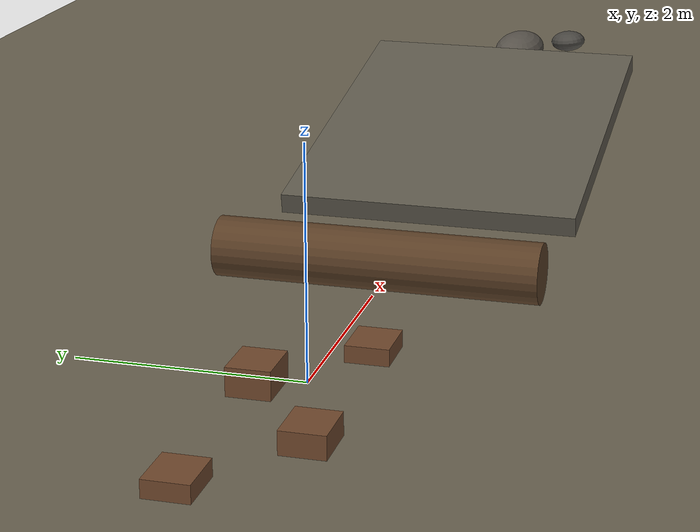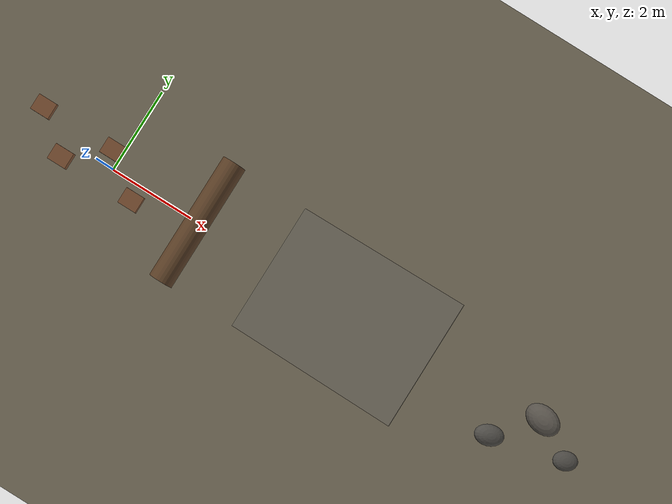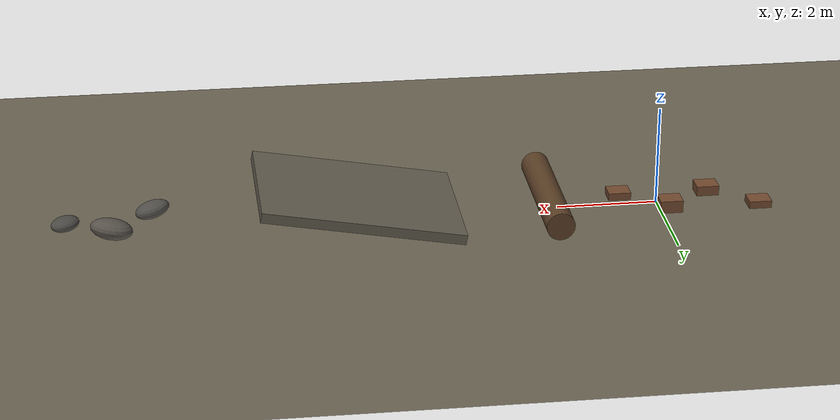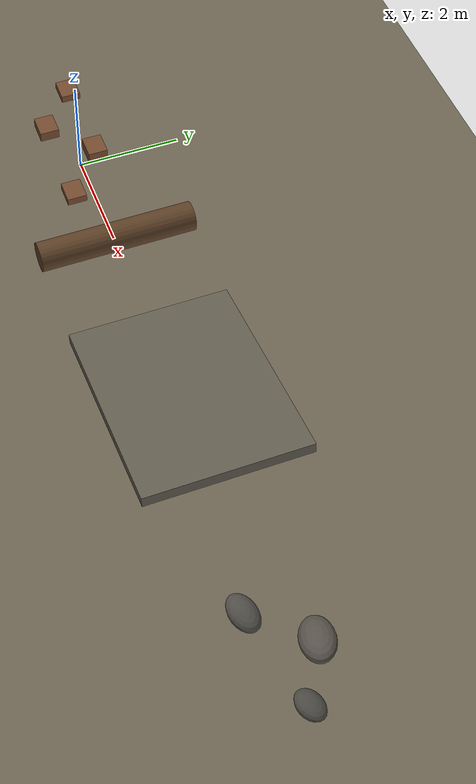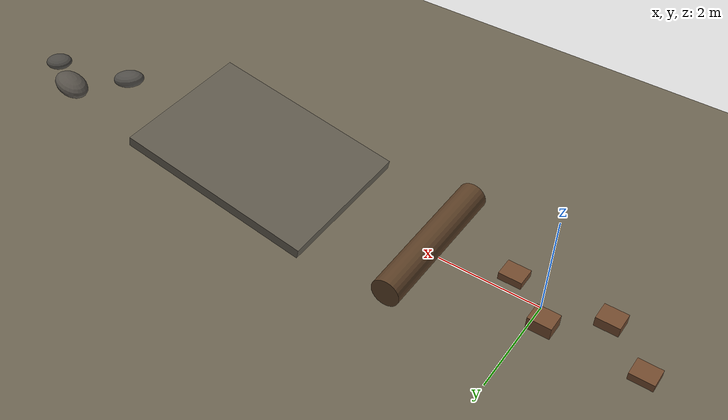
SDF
<?xml version="1.0" ?>
<sdf version="1.8">
  <world name="core_validation">
    <physics name="dart_1ms" type="dart">
      <max_step_size>0.001</max_step_size>
      <real_time_factor>1.0</real_time_factor>
    </physics>
    <plugin filename="ignition-gazebo-physics-system" name="gz::sim::systems::Physics"/>
    <plugin filename="ignition-gazebo-user-commands-system" name="gz::sim::systems::UserCommands"/>
    <plugin filename="ignition-gazebo-scene-broadcaster-system" name="gz::sim::systems::SceneBroadcaster"/>
    <plugin filename="ignition-gazebo-contact-system" name="gz::sim::systems::Contact"/>
    <gravity>0 0 -9.80665</gravity>
    <scene>
      <ambient>0.5 0.5 0.5 1</ambient>
      <background>0.8 0.85 0.9 1</background>
      <shadows>true</shadows>
    </scene>
    <light name="sun" type="directional">
      <cast_shadows>true</cast_shadows>
      <pose>0 0 10 0 0 0</pose>
      <diffuse>0.9 0.9 0.9 1</diffuse>
      <direction>-0.4 0.2 -0.9</direction>
    </light>
    <model name="ground">
      <static>true</static>
      <link name="ground_link">
        <collision name="collision">
          <geometry><plane><normal>0 0 1</normal><size>35 20</size></plane></geometry>
          <!-- Loose-sand baseline. Wheel-local anisotropy and compliance are
               applied by the rover simulation wrapper. -->
          <surface><friction><ode><mu>0.55</mu><mu2>0.55</mu2></ode></friction></surface>
        </collision>
        <visual name="visual">
          <geometry><plane><normal>0 0 1</normal><size>35 20</size></plane></geometry>
          <material><diffuse>0.42 0.39 0.32 1</diffuse></material>
        </visual>
      </link>
    </model>

    <!-- Ten-degree, four-metre incline. -->
    <model name="incline">
      <static>true</static><pose>6 0 0.45 0 -0.174533 0</pose>
      <link name="link">
        <collision name="collision"><geometry><box><size>4 3 0.2</size></box></geometry></collision>
        <visual name="visual"><geometry><box><size>4 3 0.2</size></box></geometry><material><diffuse>0.38 0.36 0.31 1</diffuse></material></visual>
      </link>
    </model>

    <!-- Alternating left/right wheel blocks exercise differential articulation. -->
    <model name="block_left_1"><static>true</static><pose>-2.0 0.36 0.075 0 0 0</pose><link name="link"><collision name="collision"><geometry><box><size>0.45 0.38 0.15</size></box></geometry></collision><visual name="visual"><geometry><box><size>0.45 0.38 0.15</size></box></geometry><material><diffuse>0.45 0.29 0.18 1</diffuse></material></visual></link></model>
    <model name="block_right_1"><static>true</static><pose>-1.1 -0.36 0.10 0 0 0</pose><link name="link"><collision name="collision"><geometry><box><size>0.45 0.38 0.20</size></box></geometry></collision><visual name="visual"><geometry><box><size>0.45 0.38 0.20</size></box></geometry><material><diffuse>0.45 0.29 0.18 1</diffuse></material></visual></link></model>
    <model name="block_left_2"><static>true</static><pose>-0.2 0.36 0.125 0 0 0</pose><link name="link"><collision name="collision"><geometry><box><size>0.45 0.38 0.25</size></box></geometry></collision><visual name="visual"><geometry><box><size>0.45 0.38 0.25</size></box></geometry><material><diffuse>0.45 0.29 0.18 1</diffuse></material></visual></link></model>
    <model name="block_right_2"><static>true</static><pose>0.7 -0.36 0.075 0 0 0</pose><link name="link"><collision name="collision"><geometry><box><size>0.45 0.38 0.15</size></box></geometry></collision><visual name="visual"><geometry><box><size>0.45 0.38 0.15</size></box></geometry><material><diffuse>0.45 0.29 0.18 1</diffuse></material></visual></link></model>

    <!-- A rounded berm crossing the course. -->
    <model name="berm"><static>true</static><pose>2.2 0 0.28 1.570796 0 0</pose><link name="link"><collision name="collision"><geometry><cylinder><radius>0.28</radius><length>3.0</length></cylinder></geometry></collision><visual name="visual"><geometry><cylinder><radius>0.28</radius><length>3.0</length></cylinder></geometry><material><diffuse>0.36 0.25 0.15 1</diffuse></material></visual></link></model>

    <!-- Primitive rocks intentionally avoid external model downloads. -->
    <model name="rock_1"><static>true</static><pose>10 -0.55 0.16 0 0.2 0.3</pose><link name="link"><collision name="collision"><geometry><ellipsoid><radii>0.35 0.24 0.16</radii></ellipsoid></geometry></collision><visual name="visual"><geometry><ellipsoid><radii>0.35 0.24 0.16</radii></ellipsoid></geometry><material><diffuse>0.31 0.30 0.28 1</diffuse></material></visual></link></model>
    <model name="rock_2"><static>true</static><pose>10.8 0.35 0.20 0.1 -0.15 -0.2</pose><link name="link"><collision name="collision"><geometry><ellipsoid><radii>0.42 0.30 0.20</radii></ellipsoid></geometry></collision><visual name="visual"><geometry><ellipsoid><radii>0.42 0.30 0.20</radii></ellipsoid></geometry><material><diffuse>0.34 0.32 0.29 1</diffuse></material></visual></link></model>
    <model name="rock_3"><static>true</static><pose>11.7 -0.15 0.13 -0.1 0.1 0.4</pose><link name="link"><collision name="collision"><geometry><ellipsoid><radii>0.29 0.22 0.13</radii></ellipsoid></geometry></collision><visual name="visual"><geometry><ellipsoid><radii>0.29 0.22 0.13</radii></ellipsoid></geometry><material><diffuse>0.29 0.28 0.26 1</diffuse></material></visual></link></model>
  </world>
</sdf>
